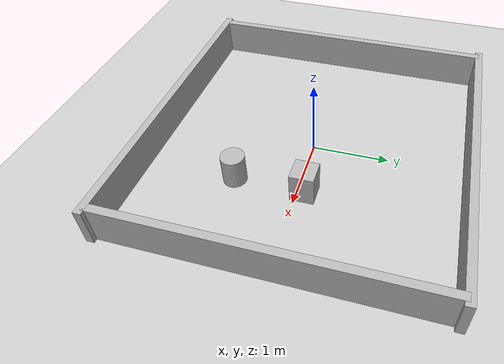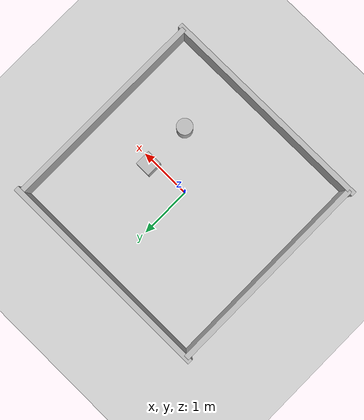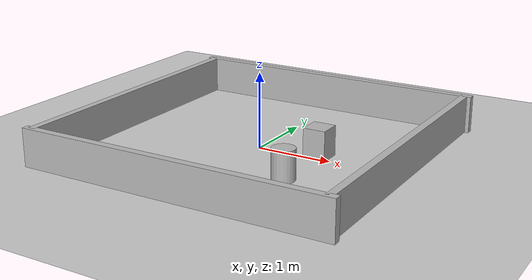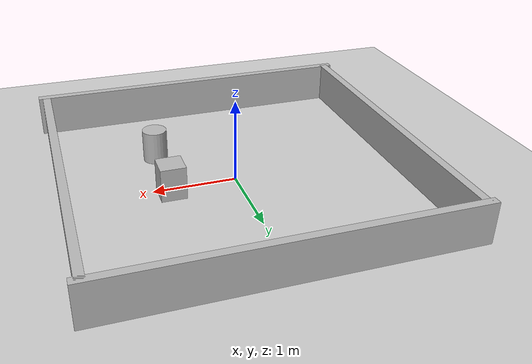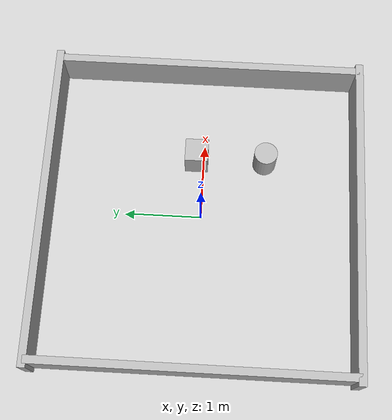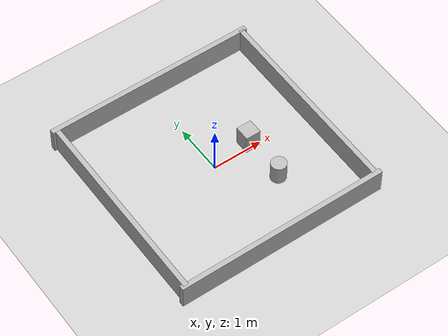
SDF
<?xml version="1.0" ?>
<sdf version="1.8">
  <world name="mundo_evaluacion_robot">

    <!-- Propiedades del motor de física -->
    <physics name="1ms" type="ignored">
      <max_step_size>0.002</max_step_size>
      <real_time_factor>1.0</real_time_factor>
    </physics>

    <!-- Plugins esenciales del sistema Gazebo Harmonic -->
    <plugin
      filename="gz-sim-physics-system"
      name="gz::sim::systems::Physics">
    </plugin>
    <plugin
      filename="gz-sim-user-commands-system"
      name="gz::sim::systems::UserCommands">
    </plugin>
    <plugin
      filename="gz-sim-scene-broadcaster-system"
      name="gz::sim::systems::SceneBroadcaster">
    </plugin>
    <plugin
      filename="gz-sim-sensors-system"
      name="gz::sim::systems::Sensors">
      <render_engine>ogre2</render_engine>
    </plugin>

    <!-- Iluminación direccional (Sol) nativa sin dependencias externas -->
    <light type="directional" name="sun">
      <cast_shadows>true</cast_shadows>
      <pose>0 0 10 0 0 0</pose>
      <diffuse>0.8 0.8 0.8 1</diffuse>
      <specular>0.2 0.2 0.2 1</specular>
      <attenuation>
        <range>1000</range>
        <constant>0.9</constant>
        <linear>0.01</linear>
        <quadratic>0.001</quadratic>
      </attenuation>
      <direction>-0.5 0.1 -0.9</direction>
    </light>

    <!-- Plano de suelo nativo -->
    <model name="ground_plane">
      <static>true</static>
      <link name="link">
        <collision name="collision">
          <geometry>
            <plane>
              <normal>0 0 1</normal>
              <size>100 100</size>
            </plane>
          </geometry>
        </collision>
        <visual name="visual">
          <geometry>
            <plane>
              <normal>0 0 1</normal>
              <size>100 100</size>
            </plane>
          </geometry>
          <material>
            <ambient>0.8 0.8 0.8 1</ambient>
            <diffuse>0.8 0.8 0.8 1</diffuse>
            <specular>0.8 0.8 0.8 1</specular>
          </material>
        </visual>
      </link>
    </model>

    <!-- Paredes del recinto cerrado (Recinto 4m x 4m) -->
    <model name="pared_norte">
      <static>true</static>
      <pose>0 2.0 0.25 0 0 0</pose>
      <link name="link">
        <collision name="col"><geometry><box><size>4.2 0.1 0.5</size></box></geometry></collision>
        <visual name="vis"><geometry><box><size>4.2 0.1 0.5</size></box></geometry></visual>
      </link>
    </model>

    <model name="pared_sur">
      <static>true</static>
      <pose>0 -2.0 0.25 0 0 0</pose>
      <link name="link">
        <collision name="col"><geometry><box><size>4.2 0.1 0.5</size></box></geometry></collision>
        <visual name="vis"><geometry><box><size>4.2 0.1 0.5</size></box></geometry></visual>
      </link>
    </model>

    <model name="pared_este">
      <static>true</static>
      <pose>2.0 0 0.25 0 0 0</pose>
      <link name="link">
        <collision name="col"><geometry><box><size>0.1 4.0 0.5</size></box></geometry></collision>
        <visual name="vis"><geometry><box><size>0.1 4.0 0.5</size></box></geometry></visual>
      </link>
    </model>

    <model name="pared_oeste">
      <static>true</static>
      <pose>-2.0 0 0.25 0 0 0</pose>
      <link name="link">
        <collision name="col"><geometry><box><size>0.1 4.0 0.5</size></box></geometry></collision>
        <visual name="vis"><geometry><box><size>0.1 4.0 0.5</size></box></geometry></visual>
      </link>
    </model>

    <!-- Obstaculo frontal 1 (Para probar frenado a 180 mm y giro) -->
    <model name="bloque_frontal_1">
      <static>true</static>
      <pose>0.8 0.1 0.2 0 0 0</pose>
      <link name="link">
        <collision name="col"><geometry><box><size>0.3 0.3 0.4</size></box></geometry></collision>
        <visual name="vis"><geometry><box><size>0.3 0.3 0.4</size></box></geometry></visual>
      </link>
    </model>

    <!-- Obstaculo 2 (Para probar emergencia < 80 mm en curva) -->
    <model name="bloque_lateral_2">
      <static>true</static>
      <pose>0.8 -0.8 0.2 0 0 0.785</pose>
      <link name="link">
        <collision name="col"><geometry><cylinder><radius>0.15</radius><length>0.4</length></cylinder></geometry></collision>
        <visual name="vis"><geometry><cylinder><radius>0.15</radius><length>0.4</length></cylinder></geometry></visual>
      </link>
    </model>

  </world>
</sdf>
